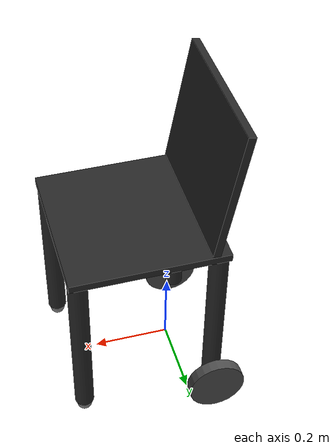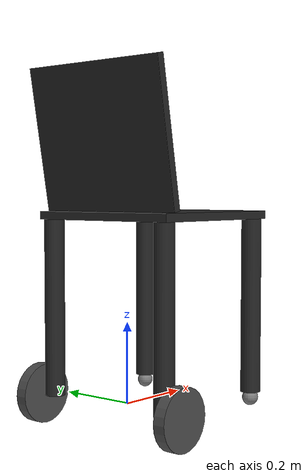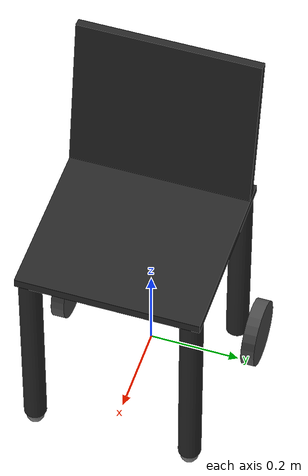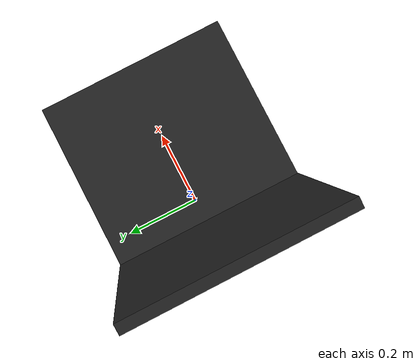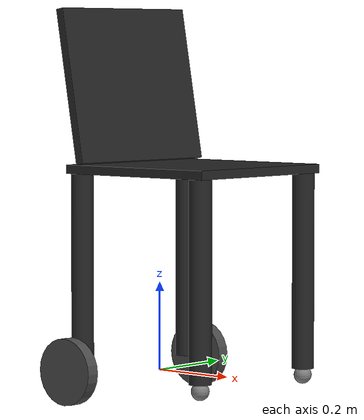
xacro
<?xml version="1.0"?>
<robot name="chair_robot" xmlns:xacro="http://www.ros.org/wiki/xacro">

  <!-- ══════════════════════════════════════════════════════════════════════
       Parameters
       ══════════════════════════════════════════════════════════════════════ -->
  <xacro:property name="seat_w"       value="0.40"/>
  <xacro:property name="seat_d"       value="0.40"/>
  <xacro:property name="seat_t"       value="0.02"/>
  <xacro:property name="seat_height"  value="0.45"/>

  <xacro:property name="back_w"       value="0.40"/>
  <xacro:property name="back_h"       value="0.35"/>
  <xacro:property name="back_t"       value="0.02"/>
  <xacro:property name="back_tilt"    value="${-10.0 * 3.14159 / 180.0}"/>

  <xacro:property name="leg_r"        value="0.025"/>
  <xacro:property name="leg_len"      value="${seat_height}"/>

  <xacro:property name="wheel_r"      value="0.075"/>
  <xacro:property name="wheel_w"      value="0.03"/>
  <xacro:property name="track"        value="0.45"/>

  <xacro:property name="caster_r"     value="0.02"/>

  <!-- Mass (kg) -->
  <xacro:property name="seat_mass"    value="2.0"/>
  <xacro:property name="back_mass"    value="1.5"/>
  <xacro:property name="leg_mass"     value="0.3"/>
  <xacro:property name="wheel_mass"   value="0.5"/>
  <xacro:property name="caster_mass"  value="0.1"/>

  <!-- Colors -->
  <xacro:property name="chair_color"  value="0.15 0.15 0.15 1.0"/>
  <xacro:property name="wheel_color"  value="0.3 0.3 0.3 1.0"/>
  <xacro:property name="caster_color" value="0.5 0.5 0.5 1.0"/>

  <!-- ══════════════════════════════════════════════════════════════════════
       Macros
       ══════════════════════════════════════════════════════════════════════ -->

  <!-- Box inertia -->
  <xacro:macro name="box_inertia" params="m x y z">
    <inertia ixx="${m*(y*y+z*z)/12}" ixy="0" ixz="0"
             iyy="${m*(x*x+z*z)/12}" iyz="0"
             izz="${m*(x*x+y*y)/12}"/>
  </xacro:macro>

  <!-- Cylinder inertia (along z-axis) -->
  <xacro:macro name="cyl_inertia" params="m r h">
    <inertia ixx="${m*(3*r*r+h*h)/12}" ixy="0" ixz="0"
             iyy="${m*(3*r*r+h*h)/12}" iyz="0"
             izz="${m*r*r/2}"/>
  </xacro:macro>

  <!-- Sphere inertia -->
  <xacro:macro name="sphere_inertia" params="m r">
    <inertia ixx="${2*m*r*r/5}" ixy="0" ixz="0"
             iyy="${2*m*r*r/5}" iyz="0"
             izz="${2*m*r*r/5}"/>
  </xacro:macro>

  <!-- Chair leg macro -->
  <xacro:macro name="chair_leg" params="name x y">
    <link name="${name}_leg">
      <visual>
        <geometry><cylinder radius="${leg_r}" length="${leg_len}"/></geometry>
        <material name="chair_mat"><color rgba="${chair_color}"/></material>
      </visual>
      <collision>
        <geometry><cylinder radius="${leg_r}" length="${leg_len}"/></geometry>
      </collision>
      <inertial>
        <mass value="${leg_mass}"/>
        <xacro:cyl_inertia m="${leg_mass}" r="${leg_r}" h="${leg_len}"/>
      </inertial>
    </link>
    <joint name="${name}_leg_joint" type="fixed">
      <parent link="seat"/>
      <child  link="${name}_leg"/>
      <origin xyz="${x} ${y} ${-leg_len/2}" rpy="0 0 0"/>
    </joint>
  </xacro:macro>

  <!-- Wheel macro (continuous joint for differential drive) -->
  <xacro:macro name="drive_wheel" params="name y_sign">
    <link name="${name}_wheel">
      <visual>
        <geometry><cylinder radius="${wheel_r}" length="${wheel_w}"/></geometry>
        <origin xyz="0 0 0" rpy="0 0 0"/>
        <material name="wheel_mat"><color rgba="${wheel_color}"/></material>
      </visual>
      <collision>
        <geometry><cylinder radius="${wheel_r}" length="${wheel_w}"/></geometry>
      </collision>
      <inertial>
        <mass value="${wheel_mass}"/>
        <xacro:cyl_inertia m="${wheel_mass}" r="${wheel_r}" h="${wheel_w}"/>
      </inertial>
    </link>
    <joint name="${name}_wheel_joint" type="continuous">
      <parent link="${name}_leg"/>
      <child  link="${name}_wheel"/>
      <!-- Wheel sits at bottom of back leg, offset outward -->
      <origin xyz="0 ${y_sign * (leg_r + wheel_w/2 + 0.005)} ${-leg_len/2}"
              rpy="${-1.5708} 0 0"/>
      <axis xyz="0 0 1"/>
      <dynamics damping="0.1" friction="0.05"/>
    </joint>
  </xacro:macro>

  <!-- Caster macro (frictionless sphere at bottom of front leg) -->
  <xacro:macro name="caster" params="name parent_leg">
    <link name="${name}_caster">
      <visual>
        <geometry><sphere radius="${caster_r}"/></geometry>
        <material name="caster_mat"><color rgba="${caster_color}"/></material>
      </visual>
      <collision>
        <geometry><sphere radius="${caster_r}"/></geometry>
        <surface>
          <friction>
            <ode><mu>0.001</mu><mu2>0.001</mu2></ode>
          </friction>
        </surface>
      </collision>
      <inertial>
        <mass value="${caster_mass}"/>
        <xacro:sphere_inertia m="${caster_mass}" r="${caster_r}"/>
      </inertial>
    </link>
    <joint name="${name}_caster_joint" type="fixed">
      <parent link="${parent_leg}_leg"/>
      <child  link="${name}_caster"/>
      <origin xyz="0 0 ${-leg_len/2 - caster_r + 0.005}" rpy="0 0 0"/>
    </joint>
  </xacro:macro>

  <!-- ══════════════════════════════════════════════════════════════════════
       Robot Structure
       ══════════════════════════════════════════════════════════════════════ -->

  <!-- base_footprint: on the ground plane, used by nav -->
  <link name="base_footprint"/>

  <!-- base_link: at wheel axle height -->
  <link name="base_link">
    <inertial>
      <mass value="0.01"/>
      <inertia ixx="0.001" ixy="0" ixz="0" iyy="0.001" iyz="0" izz="0.001"/>
    </inertial>
  </link>

  <joint name="base_footprint_joint" type="fixed">
    <parent link="base_footprint"/>
    <child  link="base_link"/>
    <origin xyz="0 0 ${wheel_r}" rpy="0 0 0"/>
  </joint>

  <!-- ── Seat ─────────────────────────────────────────────────────────── -->
  <link name="seat">
    <visual>
      <geometry><box size="${seat_d} ${seat_w} ${seat_t}"/></geometry>
      <material name="chair_mat"><color rgba="${chair_color}"/></material>
    </visual>
    <collision>
      <geometry><box size="${seat_d} ${seat_w} ${seat_t}"/></geometry>
    </collision>
    <inertial>
      <mass value="${seat_mass}"/>
      <xacro:box_inertia m="${seat_mass}" x="${seat_d}" y="${seat_w}" z="${seat_t}"/>
    </inertial>
  </link>

  <joint name="seat_joint" type="fixed">
    <parent link="base_link"/>
    <child  link="seat"/>
    <!-- Seat is above the wheel axle. Back legs are at the rear of the seat. -->
    <origin xyz="${seat_d/4} 0 ${seat_height - wheel_r + seat_t/2}" rpy="0 0 0"/>
  </joint>

  <!-- ── Backrest ─────────────────────────────────────────────────────── -->
  <link name="backrest">
    <visual>
      <geometry><box size="${back_t} ${back_w} ${back_h}"/></geometry>
      <material name="chair_mat"><color rgba="${chair_color}"/></material>
    </visual>
    <collision>
      <geometry><box size="${back_t} ${back_w} ${back_h}"/></geometry>
    </collision>
    <inertial>
      <mass value="${back_mass}"/>
      <xacro:box_inertia m="${back_mass}" x="${back_t}" y="${back_w}" z="${back_h}"/>
    </inertial>
  </link>

  <joint name="backrest_joint" type="fixed">
    <parent link="seat"/>
    <child  link="backrest"/>
    <!-- Backrest rises from the back edge of the seat, tilted slightly back -->
    <origin xyz="${-seat_d/2 + back_t/2} 0 ${seat_t/2 + back_h/2}"
            rpy="0 ${back_tilt} 0"/>
  </joint>

  <!-- ── Back legs (with drive wheels) ────────────────────────────────── -->
  <xacro:chair_leg name="back_left"  x="${-seat_d/2 + leg_r}" y="${ seat_w/2 - leg_r}"/>
  <xacro:chair_leg name="back_right" x="${-seat_d/2 + leg_r}" y="${-seat_w/2 + leg_r}"/>

  <xacro:drive_wheel name="back_left"  y_sign="1"/>
  <xacro:drive_wheel name="back_right" y_sign="-1"/>

  <!-- ── Front legs (with casters) ────────────────────────────────────── -->
  <xacro:chair_leg name="front_left"  x="${ seat_d/2 - leg_r}" y="${ seat_w/2 - leg_r}"/>
  <xacro:chair_leg name="front_right" x="${ seat_d/2 - leg_r}" y="${-seat_w/2 + leg_r}"/>

  <xacro:caster name="front_left"  parent_leg="front_left"/>
  <xacro:caster name="front_right" parent_leg="front_right"/>

  <!-- ══════════════════════════════════════════════════════════════════════
       Gz Sim (Fortress) Plugins
       ══════════════════════════════════════════════════════════════════════ -->

  <gazebo>
    <!-- Differential drive controller (Gz Sim system plugin) -->
    <plugin filename="gz-sim-diff-drive-system"
            name="gz::sim::systems::DiffDrive">
      <left_joint>back_left_wheel_joint</left_joint>
      <right_joint>back_right_wheel_joint</right_joint>
      <wheel_separation>${track}</wheel_separation>
      <wheel_radius>${wheel_r}</wheel_radius>
      <max_linear_acceleration>2.0</max_linear_acceleration>
      <odom_publish_frequency>50</odom_publish_frequency>
      <topic>cmd_vel</topic>
      <odom_topic>odom</odom_topic>
      <tf_topic>tf</tf_topic>
      <frame_id>odom</frame_id>
      <child_frame_id>base_footprint</child_frame_id>
    </plugin>

    <!-- Joint state publisher for RViz -->
    <plugin filename="gz-sim-joint-state-publisher-system"
            name="gz::sim::systems::JointStatePublisher">
      <joint_name>back_left_wheel_joint</joint_name>
      <joint_name>back_right_wheel_joint</joint_name>
      <update_rate>50</update_rate>
      <topic>joint_states</topic>
    </plugin>
  </gazebo>

  <!-- Wheel surface properties for good traction -->
  <gazebo reference="back_left_wheel">
    <mu1>1.5</mu1>
    <mu2>1.5</mu2>
  </gazebo>
  <gazebo reference="back_right_wheel">
    <mu1>1.5</mu1>
    <mu2>1.5</mu2>
  </gazebo>

  <!-- Low friction on casters -->
  <gazebo reference="front_left_caster">
    <mu1>0.001</mu1>
    <mu2>0.001</mu2>
  </gazebo>
  <gazebo reference="front_right_caster">
    <mu1>0.001</mu1>
    <mu2>0.001</mu2>
  </gazebo>

</robot>
